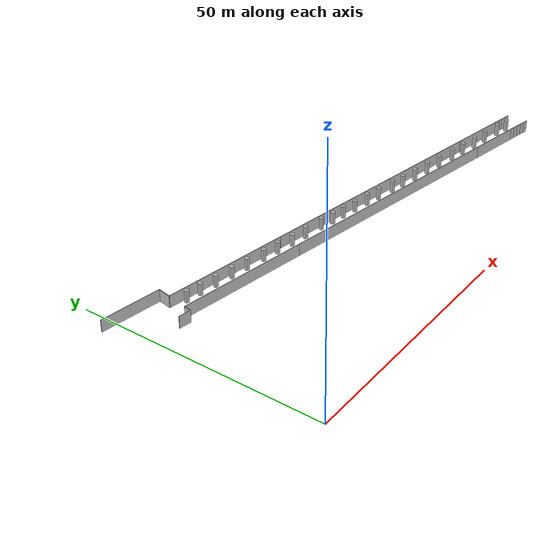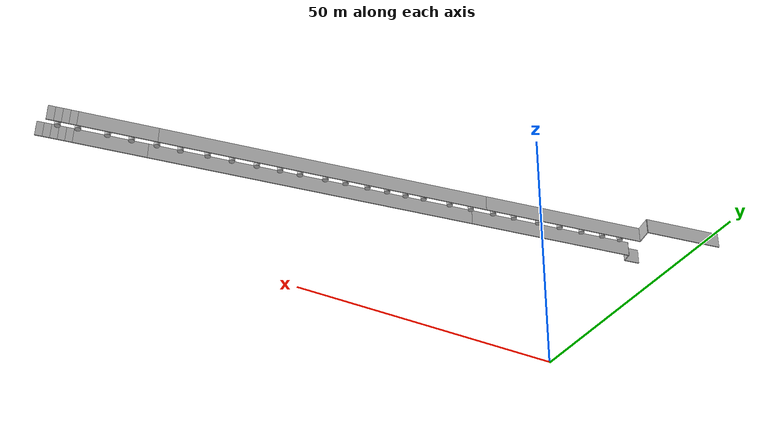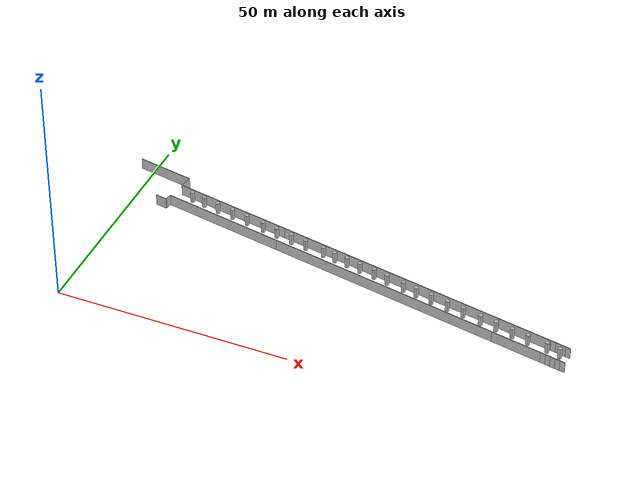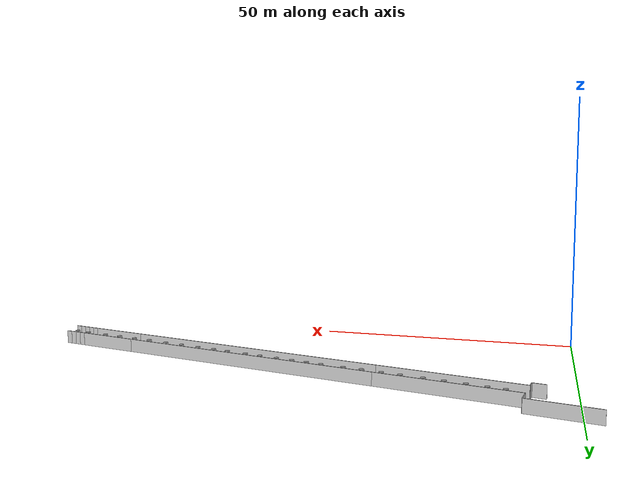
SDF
<?xml version="1.0" ?>
<sdf version="1.6">
  <model name="sps_1423">
    <pose frame="">0 0 0 0 -0 0</pose>
    <static>1</static>
    <self_collide>0</self_collide>
    <allow_auto_disable>0</allow_auto_disable>
    <link name="Wall69">
      <kinematic>0</kinematic>
      <gravity>1</gravity>
      <self_collide>0</self_collide>
      <collision name="collision">
        <geometry>
          <box>
            <size>1.5008 0.15 2.5</size>
          </box>
        </geometry>
        <pose frame="">0 0 0 0 -0 0</pose>
      </collision>
      <visual name="visual">
        <geometry>
          <box>
            <size>1.5008 0.15 2.5</size>
          </box>
        </geometry>
        <pose frame="">0 0 0 0 -0 0</pose>
        <cast_shadows>1</cast_shadows>
        <transparency>0.0</transparency>
      </visual>
      <pose frame="">7.90746 33.8521 1.25 0 0 -1.75009</pose>
    </link>
    <link name="Wall70">
      <kinematic>0</kinematic>
      <gravity>1</gravity>
      <self_collide>0</self_collide>
      <collision name="collision">
        <geometry>
          <box>
            <size>26.1084 0.15 2.5</size>
          </box>
        </geometry>
        <pose frame="">0 0 0 0 -0 0</pose>
      </collision>
      <visual name="visual">
        <geometry>
          <box>
            <size>26.1084 0.15 2.5</size>
          </box>
        </geometry>
        <pose frame="">0 0 0 0 -0 0</pose>
        <cast_shadows>1</cast_shadows>
        <transparency>0.0</transparency>
      </visual>
      <pose frame="">21.6248 36.3337 1.25 0 0 -0.179428</pose>
    </link>
    <link name="Wall71">
      <kinematic>0</kinematic>
      <gravity>1</gravity>
      <self_collide>0</self_collide>
      <collision name="collision">
        <geometry>
          <box>
            <size>50.8158 0.15 2.5</size>
          </box>
        </geometry>
        <pose frame="">0 0 0 0 -0 0</pose>
      </collision>
      <visual name="visual">
        <geometry>
          <box>
            <size>50.8158 0.15 2.5</size>
          </box>
        </geometry>
        <pose frame="">0 0 0 0 -0 0</pose>
        <cast_shadows>1</cast_shadows>
        <transparency>0.0</transparency>
      </visual>
      <pose frame="">59.4694 29.4695 1.25 0 0 -0.179428</pose>
    </link>
    <link name="Wall72">
      <kinematic>0</kinematic>
      <gravity>1</gravity>
      <self_collide>0</self_collide>
      <collision name="collision">
        <geometry>
          <box>
            <size>11.6478 0.15 2.5</size>
          </box>
        </geometry>
        <pose frame="">0 0 0 0 -0 0</pose>
      </collision>
      <visual name="visual">
        <geometry>
          <box>
            <size>11.6478 0.15 2.5</size>
          </box>
        </geometry>
        <pose frame="">0 0 0 0 -0 0</pose>
        <cast_shadows>1</cast_shadows>
        <transparency>0.0</transparency>
      </visual>
      <pose frame="">90.1999 23.8957 1.25 0 0 -0.179428</pose>
    </link>
    <link name="Wall146">
      <kinematic>0</kinematic>
      <gravity>1</gravity>
      <self_collide>0</self_collide>
      <collision name="collision">
        <geometry>
          <box>
            <size>2.50041 0.15 2.5</size>
          </box>
        </geometry>
        <pose frame="">0 0 0 0 -0 0</pose>
      </collision>
      <visual name="visual">
        <geometry>
          <box>
            <size>2.50041 0.15 2.5</size>
          </box>
        </geometry>
        <pose frame="">0 0 0 0 -0 0</pose>
        <cast_shadows>1</cast_shadows>
        <transparency>0.0</transparency>
      </visual>
      <pose frame="">6.54354 33.337 1.25 0 -0 2.96202</pose>
    </link>
    <link name="Wall571">
      <kinematic>0</kinematic>
      <gravity>1</gravity>
      <self_collide>0</self_collide>
      <collision name="collision">
        <geometry>
          <box>
            <size>2.66015 0.15 2.5</size>
          </box>
        </geometry>
        <pose frame="">0 0 0 0 -0 0</pose>
      </collision>
      <visual name="visual">
        <geometry>
          <box>
            <size>2.66015 0.15 2.5</size>
          </box>
        </geometry>
        <pose frame="">0 0 0 0 -0 0</pose>
        <cast_shadows>1</cast_shadows>
        <transparency>0.0</transparency>
      </visual>
      <pose frame="">9.01763 39.9722 1.25 0 0 -1.75024</pose>
    </link>
    <link name="Wall572">
      <kinematic>0</kinematic>
      <gravity>1</gravity>
      <self_collide>0</self_collide>
      <collision name="collision">
        <geometry>
          <box>
            <size>12.5 0.15 2.5</size>
          </box>
        </geometry>
        <pose frame="">0 0 0 0 -0 0</pose>
      </collision>
      <visual name="visual">
        <geometry>
          <box>
            <size>12.5 0.15 2.5</size>
          </box>
        </geometry>
        <pose frame="">0 0 0 0 -0 0</pose>
        <cast_shadows>1</cast_shadows>
        <transparency>0.0</transparency>
      </visual>
      <pose frame="">3.10534 42.3961 1.25 0 0 -0.179394</pose>
    </link>
    <link name="Wall647">
      <kinematic>0</kinematic>
      <gravity>1</gravity>
      <self_collide>0</self_collide>
      <collision name="collision">
        <geometry>
          <box>
            <size>10.886 0.15 2.5</size>
          </box>
        </geometry>
        <pose frame="">0 0 0 0 -0 0</pose>
      </collision>
      <visual name="visual">
        <geometry>
          <box>
            <size>10.886 0.15 2.5</size>
          </box>
        </geometry>
        <pose frame="">0 0 0 0 -0 0</pose>
        <cast_shadows>1</cast_shadows>
        <transparency>0.0</transparency>
      </visual>
      <pose frame="">89.8251 19.7569 1.25 0 -0 2.96217</pose>
    </link>
    <link name="Wall648">
      <kinematic>0</kinematic>
      <gravity>1</gravity>
      <self_collide>0</self_collide>
      <collision name="collision">
        <geometry>
          <box>
            <size>50.8158 0.15 2.5</size>
          </box>
        </geometry>
        <pose frame="">0 0 0 0 -0 0</pose>
      </collision>
      <visual name="visual">
        <geometry>
          <box>
            <size>50.8158 0.15 2.5</size>
          </box>
        </geometry>
        <pose frame="">0 0 0 0 -0 0</pose>
        <cast_shadows>1</cast_shadows>
        <transparency>0.0</transparency>
      </visual>
      <pose frame="">59.4694 25.2626 1.25 0 -0 2.96217</pose>
    </link>
    <link name="Wall649">
      <kinematic>0</kinematic>
      <gravity>1</gravity>
      <self_collide>0</self_collide>
      <collision name="collision">
        <geometry>
          <box>
            <size>26.8594 0.15 2.5</size>
          </box>
        </geometry>
        <pose frame="">0 0 0 0 -0 0</pose>
      </collision>
      <visual name="visual">
        <geometry>
          <box>
            <size>26.8594 0.15 2.5</size>
          </box>
        </geometry>
        <pose frame="">0 0 0 0 -0 0</pose>
        <cast_shadows>1</cast_shadows>
        <transparency>0.0</transparency>
      </visual>
      <pose frame="">21.2554 32.1938 1.25 0 -0 2.96217</pose>
    </link>
    <link name="Wall8181">
      <kinematic>0</kinematic>
      <gravity>1</gravity>
      <self_collide>0</self_collide>
      <collision name="collision">
        <geometry>
          <box>
            <size>1.07598 0.15 2.5</size>
          </box>
        </geometry>
        <pose frame="">0 0 0 0 -0 0</pose>
      </collision>
      <visual name="visual">
        <geometry>
          <box>
            <size>1.07598 0.15 2.5</size>
          </box>
        </geometry>
        <pose frame="">0 0 0 0 -0 0</pose>
        <cast_shadows>1</cast_shadows>
        <transparency>0.0</transparency>
      </visual>
      <pose frame="">99.9402 17.8966 1.25 0 -0 2.95444</pose>
    </link>
    <link name="Wall8182">
      <kinematic>0</kinematic>
      <gravity>1</gravity>
      <self_collide>0</self_collide>
      <collision name="collision">
        <geometry>
          <box>
            <size>1.07593 0.15 2.5</size>
          </box>
        </geometry>
        <pose frame="">0 0 0 0 -0 0</pose>
      </collision>
      <visual name="visual">
        <geometry>
          <box>
            <size>1.07593 0.15 2.5</size>
          </box>
        </geometry>
        <pose frame="">0 0 0 0 -0 0</pose>
        <cast_shadows>1</cast_shadows>
        <transparency>0.0</transparency>
      </visual>
      <pose frame="">98.883 18.0962 1.25 0 -0 2.95559</pose>
    </link>
    <link name="Wall8183">
      <kinematic>0</kinematic>
      <gravity>1</gravity>
      <self_collide>0</self_collide>
      <collision name="collision">
        <geometry>
          <box>
            <size>1.07596 0.15 2.5</size>
          </box>
        </geometry>
        <pose frame="">0 0 0 0 -0 0</pose>
      </collision>
      <visual name="visual">
        <geometry>
          <box>
            <size>1.07596 0.15 2.5</size>
          </box>
        </geometry>
        <pose frame="">0 0 0 0 -0 0</pose>
        <cast_shadows>1</cast_shadows>
        <transparency>0.0</transparency>
      </visual>
      <pose frame="">97.8255 18.2946 1.25 0 -0 2.95669</pose>
    </link>
    <link name="Wall8184">
      <kinematic>0</kinematic>
      <gravity>1</gravity>
      <self_collide>0</self_collide>
      <collision name="collision">
        <geometry>
          <box>
            <size>1.07609 0.15 2.5</size>
          </box>
        </geometry>
        <pose frame="">0 0 0 0 -0 0</pose>
      </collision>
      <visual name="visual">
        <geometry>
          <box>
            <size>1.07609 0.15 2.5</size>
          </box>
        </geometry>
        <pose frame="">0 0 0 0 -0 0</pose>
        <cast_shadows>1</cast_shadows>
        <transparency>0.0</transparency>
      </visual>
      <pose frame="">96.7677 18.4918 1.25 0 -0 2.95787</pose>
    </link>
    <link name="Wall8185">
      <kinematic>0</kinematic>
      <gravity>1</gravity>
      <self_collide>0</self_collide>
      <collision name="collision">
        <geometry>
          <box>
            <size>1.07587 0.15 2.5</size>
          </box>
        </geometry>
        <pose frame="">0 0 0 0 -0 0</pose>
      </collision>
      <visual name="visual">
        <geometry>
          <box>
            <size>1.07587 0.15 2.5</size>
          </box>
        </geometry>
        <pose frame="">0 0 0 0 -0 0</pose>
        <cast_shadows>1</cast_shadows>
        <transparency>0.0</transparency>
      </visual>
      <pose frame="">95.7097 18.6878 1.25 0 -0 2.95898</pose>
    </link>
    <link name="Wall9147">
      <kinematic>0</kinematic>
      <gravity>1</gravity>
      <self_collide>0</self_collide>
      <collision name="collision">
        <geometry>
          <box>
            <size>1.08064 0.15 2.5</size>
          </box>
        </geometry>
        <pose frame="">0 0 0 0 -0 0</pose>
      </collision>
      <visual name="visual">
        <geometry>
          <box>
            <size>1.08064 0.15 2.5</size>
          </box>
        </geometry>
        <pose frame="">0 0 0 0 -0 0</pose>
        <cast_shadows>1</cast_shadows>
        <transparency>0.0</transparency>
      </visual>
      <pose frame="">99.6486 22.1638 1.25 0 -0 2.95566</pose>
    </link>
    <link name="Wall9148">
      <kinematic>0</kinematic>
      <gravity>1</gravity>
      <self_collide>0</self_collide>
      <collision name="collision">
        <geometry>
          <box>
            <size>1.08064 0.15 2.5</size>
          </box>
        </geometry>
        <pose frame="">0 0 0 0 -0 0</pose>
      </collision>
      <visual name="visual">
        <geometry>
          <box>
            <size>1.08064 0.15 2.5</size>
          </box>
        </geometry>
        <pose frame="">0 0 0 0 -0 0</pose>
        <cast_shadows>1</cast_shadows>
        <transparency>0.0</transparency>
      </visual>
      <pose frame="">98.5865 22.3631 1.25 0 -0 2.95658</pose>
    </link>
    <link name="Wall9149">
      <kinematic>0</kinematic>
      <gravity>1</gravity>
      <self_collide>0</self_collide>
      <collision name="collision">
        <geometry>
          <box>
            <size>1.08074 0.15 2.5</size>
          </box>
        </geometry>
        <pose frame="">0 0 0 0 -0 0</pose>
      </collision>
      <visual name="visual">
        <geometry>
          <box>
            <size>1.08074 0.15 2.5</size>
          </box>
        </geometry>
        <pose frame="">0 0 0 0 -0 0</pose>
        <cast_shadows>1</cast_shadows>
        <transparency>0.0</transparency>
      </visual>
      <pose frame="">97.5242 22.5612 1.25 0 -0 2.95792</pose>
    </link>
    <link name="Wall9150">
      <kinematic>0</kinematic>
      <gravity>1</gravity>
      <self_collide>0</self_collide>
      <collision name="collision">
        <geometry>
          <box>
            <size>1.08062 0.15 2.5</size>
          </box>
        </geometry>
        <pose frame="">0 0 0 0 -0 0</pose>
      </collision>
      <visual name="visual">
        <geometry>
          <box>
            <size>1.08062 0.15 2.5</size>
          </box>
        </geometry>
        <pose frame="">0 0 0 0 -0 0</pose>
        <cast_shadows>1</cast_shadows>
        <transparency>0.0</transparency>
      </visual>
      <pose frame="">96.4616 22.7581 1.25 0 -0 2.95882</pose>
    </link>

    <link name="Cylinder11404">
      <kinematic>0</kinematic>
      <gravity>1</gravity>
      <self_collide>0</self_collide>
      <collision name="collision">
        <geometry>
          <cylinder>
            <radius>0.4518338297493756</radius>
            <length>2.5</length>
          </cylinder>
        </geometry>
        <pose frame="">0 0 0 0 -0 0</pose>
      </collision>
      <visual name="visual">
        <geometry>
          <cylinder>
            <radius>0.4518338297493756</radius>
            <length>2.5</length>
          </cylinder>
        </geometry>
        <pose frame="">0 0 0 0 -0 0</pose>
        <cast_shadows>1</cast_shadows>
        <transparency>0.0</transparency>
      </visual>
      <pose frame="">11.829 37.394 1.25 0 -0 0</pose>
    </link>
    <link name="Cylinder11405">
      <kinematic>0</kinematic>
      <gravity>1</gravity>
      <self_collide>0</self_collide>
      <collision name="collision">
        <geometry>
          <cylinder>
            <radius>0.4518338297493756</radius>
            <length>2.5</length>
          </cylinder>
        </geometry>
        <pose frame="">0 0 0 0 -0 0</pose>
      </collision>
      <visual name="visual">
        <geometry>
          <cylinder>
            <radius>0.4518338297493756</radius>
            <length>2.5</length>
          </cylinder>
        </geometry>
        <pose frame="">0 0 0 0 -0 0</pose>
        <cast_shadows>1</cast_shadows>
        <transparency>0.0</transparency>
      </visual>
      <pose frame="">14.807 36.8399 1.25 0 -0 0</pose>
    </link>
    <link name="Cylinder11406">
      <kinematic>0</kinematic>
      <gravity>1</gravity>
      <self_collide>0</self_collide>
      <collision name="collision">
        <geometry>
          <cylinder>
            <radius>0.4518338297493756</radius>
            <length>2.5</length>
          </cylinder>
        </geometry>
        <pose frame="">0 0 0 0 -0 0</pose>
      </collision>
      <visual name="visual">
        <geometry>
          <cylinder>
            <radius>0.4518338297493756</radius>
            <length>2.5</length>
          </cylinder>
        </geometry>
        <pose frame="">0 0 0 0 -0 0</pose>
        <cast_shadows>1</cast_shadows>
        <transparency>0.0</transparency>
      </visual>
      <pose frame="">18.2779 36.1419 1.25 0 -0 0</pose>
    </link>
    <link name="Cylinder11407">
      <kinematic>0</kinematic>
      <gravity>1</gravity>
      <self_collide>0</self_collide>
      <collision name="collision">
        <geometry>
          <cylinder>
            <radius>0.4518338297493756</radius>
            <length>2.5</length>
          </cylinder>
        </geometry>
        <pose frame="">0 0 0 0 -0 0</pose>
      </collision>
      <visual name="visual">
        <geometry>
          <cylinder>
            <radius>0.4518338297493756</radius>
            <length>2.5</length>
          </cylinder>
        </geometry>
        <pose frame="">0 0 0 0 -0 0</pose>
        <cast_shadows>1</cast_shadows>
        <transparency>0.0</transparency>
      </visual>
      <pose frame="">21.9542 35.485 1.25 0 -0 0</pose>
    </link>
    <link name="Cylinder11408">
      <kinematic>0</kinematic>
      <gravity>1</gravity>
      <self_collide>0</self_collide>
      <collision name="collision">
        <geometry>
          <cylinder>
            <radius>0.4518338297493756</radius>
            <length>2.5</length>
          </cylinder>
        </geometry>
        <pose frame="">0 0 0 0 -0 0</pose>
      </collision>
      <visual name="visual">
        <geometry>
          <cylinder>
            <radius>0.4518338297493756</radius>
            <length>2.5</length>
          </cylinder>
        </geometry>
        <pose frame="">0 0 0 0 -0 0</pose>
        <cast_shadows>1</cast_shadows>
        <transparency>0.0</transparency>
      </visual>
      <pose frame="">25.5484 34.8486 1.25 0 -0 0</pose>
    </link>
    <link name="Cylinder11409">
      <kinematic>0</kinematic>
      <gravity>1</gravity>
      <self_collide>0</self_collide>
      <collision name="collision">
        <geometry>
          <cylinder>
            <radius>0.4518338297493756</radius>
            <length>2.5</length>
          </cylinder>
        </geometry>
        <pose frame="">0 0 0 0 -0 0</pose>
      </collision>
      <visual name="visual">
        <geometry>
          <cylinder>
            <radius>0.4518338297493756</radius>
            <length>2.5</length>
          </cylinder>
        </geometry>
        <pose frame="">0 0 0 0 -0 0</pose>
        <cast_shadows>1</cast_shadows>
        <transparency>0.0</transparency>
      </visual>
      <pose frame="">29.5327 34.1301 1.25 0 -0 0</pose>
    </link>
    <link name="Cylinder11410">
      <kinematic>0</kinematic>
      <gravity>1</gravity>
      <self_collide>0</self_collide>
      <collision name="collision">
        <geometry>
          <cylinder>
            <radius>0.4518338297493756</radius>
            <length>2.5</length>
          </cylinder>
        </geometry>
        <pose frame="">0 0 0 0 -0 0</pose>
      </collision>
      <visual name="visual">
        <geometry>
          <cylinder>
            <radius>0.4518338297493756</radius>
            <length>2.5</length>
          </cylinder>
        </geometry>
        <pose frame="">0 0 0 0 -0 0</pose>
        <cast_shadows>1</cast_shadows>
        <transparency>0.0</transparency>
      </visual>
      <pose frame="">32.9009 33.4937 1.25 0 -0 0</pose>
    </link>
    <link name="Cylinder11411">
      <kinematic>0</kinematic>
      <gravity>1</gravity>
      <self_collide>0</self_collide>
      <collision name="collision">
        <geometry>
          <cylinder>
            <radius>0.4518338297493756</radius>
            <length>2.5</length>
          </cylinder>
        </geometry>
        <pose frame="">0 0 0 0 -0 0</pose>
      </collision>
      <visual name="visual">
        <geometry>
          <cylinder>
            <radius>0.4518338297493756</radius>
            <length>2.5</length>
          </cylinder>
        </geometry>
        <pose frame="">0 0 0 0 -0 0</pose>
        <cast_shadows>1</cast_shadows>
        <transparency>0.0</transparency>
      </visual>
      <pose frame="">36.5023 32.8145 1.25 0 -0 0</pose>
    </link>
    <link name="Cylinder11412">
      <kinematic>0</kinematic>
      <gravity>1</gravity>
      <self_collide>0</self_collide>
      <collision name="collision">
        <geometry>
          <cylinder>
            <radius>0.4518338297493756</radius>
            <length>2.5</length>
          </cylinder>
        </geometry>
        <pose frame="">0 0 0 0 -0 0</pose>
      </collision>
      <visual name="visual">
        <geometry>
          <cylinder>
            <radius>0.4518338297493756</radius>
            <length>2.5</length>
          </cylinder>
        </geometry>
        <pose frame="">0 0 0 0 -0 0</pose>
        <cast_shadows>1</cast_shadows>
        <transparency>0.0</transparency>
      </visual>
      <pose frame="">39.9321 32.2602 1.25 0 -0 0</pose>
    </link>
    <link name="Cylinder11413">
      <kinematic>0</kinematic>
      <gravity>1</gravity>
      <self_collide>0</self_collide>
      <collision name="collision">
        <geometry>
          <cylinder>
            <radius>0.4518338297493756</radius>
            <length>2.5</length>
          </cylinder>
        </geometry>
        <pose frame="">0 0 0 0 -0 0</pose>
      </collision>
      <visual name="visual">
        <geometry>
          <cylinder>
            <radius>0.4518338297493756</radius>
            <length>2.5</length>
          </cylinder>
        </geometry>
        <pose frame="">0 0 0 0 -0 0</pose>
        <cast_shadows>1</cast_shadows>
        <transparency>0.0</transparency>
      </visual>
      <pose frame="">44.1424 31.6033 1.25 0 -0 0</pose>
    </link>
    <link name="Cylinder11414">
      <kinematic>0</kinematic>
      <gravity>1</gravity>
      <self_collide>0</self_collide>
      <collision name="collision">
        <geometry>
          <cylinder>
            <radius>0.4518338297493756</radius>
            <length>2.5</length>
          </cylinder>
        </geometry>
        <pose frame="">0 0 0 0 -0 0</pose>
      </collision>
      <visual name="visual">
        <geometry>
          <cylinder>
            <radius>0.4518338297493756</radius>
            <length>2.5</length>
          </cylinder>
        </geometry>
        <pose frame="">0 0 0 0 -0 0</pose>
        <cast_shadows>1</cast_shadows>
        <transparency>0.0</transparency>
      </visual>
      <pose frame="">46.9561 30.9669 1.25 0 -0 0</pose>
    </link>
    <link name="Cylinder11415">
      <kinematic>0</kinematic>
      <gravity>1</gravity>
      <self_collide>0</self_collide>
      <collision name="collision">
        <geometry>
          <cylinder>
            <radius>0.4518338297493756</radius>
            <length>2.5</length>
          </cylinder>
        </geometry>
        <pose frame="">0 0 0 0 -0 0</pose>
      </collision>
      <visual name="visual">
        <geometry>
          <cylinder>
            <radius>0.4518338297493756</radius>
            <length>2.5</length>
          </cylinder>
        </geometry>
        <pose frame="">0 0 0 0 -0 0</pose>
        <cast_shadows>1</cast_shadows>
        <transparency>0.0</transparency>
      </visual>
      <pose frame="">49.8519 30.4948 1.25 0 -0 0</pose>
    </link>
    <link name="Cylinder11416">
      <kinematic>0</kinematic>
      <gravity>1</gravity>
      <self_collide>0</self_collide>
      <collision name="collision">
        <geometry>
          <cylinder>
            <radius>0.4518338297493756</radius>
            <length>2.5</length>
          </cylinder>
        </geometry>
        <pose frame="">0 0 0 0 -0 0</pose>
      </collision>
      <visual name="visual">
        <geometry>
          <cylinder>
            <radius>0.4518338297493756</radius>
            <length>2.5</length>
          </cylinder>
        </geometry>
        <pose frame="">0 0 0 0 -0 0</pose>
        <cast_shadows>1</cast_shadows>
        <transparency>0.0</transparency>
      </visual>
      <pose frame="">52.8915 29.8789 1.25 0 -0 0</pose>
    </link>
    <link name="Cylinder11417">
      <kinematic>0</kinematic>
      <gravity>1</gravity>
      <self_collide>0</self_collide>
      <collision name="collision">
        <geometry>
          <cylinder>
            <radius>0.4518338297493756</radius>
            <length>2.5</length>
          </cylinder>
        </geometry>
        <pose frame="">0 0 0 0 -0 0</pose>
      </collision>
      <visual name="visual">
        <geometry>
          <cylinder>
            <radius>0.4518338297493756</radius>
            <length>2.5</length>
          </cylinder>
        </geometry>
        <pose frame="">0 0 0 0 -0 0</pose>
        <cast_shadows>1</cast_shadows>
        <transparency>0.0</transparency>
      </visual>
      <pose frame="">56.2803 29.263 1.25 0 -0 0</pose>
    </link>
    <link name="Cylinder11418">
      <kinematic>0</kinematic>
      <gravity>1</gravity>
      <self_collide>0</self_collide>
      <collision name="collision">
        <geometry>
          <cylinder>
            <radius>0.4518338297493756</radius>
            <length>2.5</length>
          </cylinder>
        </geometry>
        <pose frame="">0 0 0 0 -0 0</pose>
      </collision>
      <visual name="visual">
        <geometry>
          <cylinder>
            <radius>0.4518338297493756</radius>
            <length>2.5</length>
          </cylinder>
        </geometry>
        <pose frame="">0 0 0 0 -0 0</pose>
        <cast_shadows>1</cast_shadows>
        <transparency>0.0</transparency>
      </visual>
      <pose frame="">59.3199 28.6266 1.25 0 -0 0</pose>
    </link>
    <link name="Cylinder11419">
      <kinematic>0</kinematic>
      <gravity>1</gravity>
      <self_collide>0</self_collide>
      <collision name="collision">
        <geometry>
          <cylinder>
            <radius>0.4518338297493756</radius>
            <length>2.5</length>
          </cylinder>
        </geometry>
        <pose frame="">0 0 0 0 -0 0</pose>
      </collision>
      <visual name="visual">
        <geometry>
          <cylinder>
            <radius>0.4518338297493756</radius>
            <length>2.5</length>
          </cylinder>
        </geometry>
        <pose frame="">0 0 0 0 -0 0</pose>
        <cast_shadows>1</cast_shadows>
        <transparency>0.0</transparency>
      </visual>
      <pose frame="">63.1646 27.867 1.25 0 -0 0</pose>
    </link>
    <link name="Cylinder11420">
      <kinematic>0</kinematic>
      <gravity>1</gravity>
      <self_collide>0</self_collide>
      <collision name="collision">
        <geometry>
          <cylinder>
            <radius>0.4518338297493756</radius>
            <length>2.5</length>
          </cylinder>
        </geometry>
        <pose frame="">0 0 0 0 -0 0</pose>
      </collision>
      <visual name="visual">
        <geometry>
          <cylinder>
            <radius>0.4518338297493756</radius>
            <length>2.5</length>
          </cylinder>
        </geometry>
        <pose frame="">0 0 0 0 -0 0</pose>
        <cast_shadows>1</cast_shadows>
        <transparency>0.0</transparency>
      </visual>
      <pose frame="">66.1426 27.3129 1.25 0 -0 0</pose>
    </link>
    <link name="Cylinder11421">
      <kinematic>0</kinematic>
      <gravity>1</gravity>
      <self_collide>0</self_collide>
      <collision name="collision">
        <geometry>
          <cylinder>
            <radius>0.4518338297493756</radius>
            <length>2.5</length>
          </cylinder>
        </geometry>
        <pose frame="">0 0 0 0 -0 0</pose>
      </collision>
      <visual name="visual">
        <geometry>
          <cylinder>
            <radius>0.4518338297493756</radius>
            <length>2.5</length>
          </cylinder>
        </geometry>
        <pose frame="">0 0 0 0 -0 0</pose>
        <cast_shadows>1</cast_shadows>
        <transparency>0.0</transparency>
      </visual>
      <pose frame="">69.6135 26.6149 1.25 0 -0 0</pose>
    </link>
    <link name="Cylinder11422">
      <kinematic>0</kinematic>
      <gravity>1</gravity>
      <self_collide>0</self_collide>
      <collision name="collision">
        <geometry>
          <cylinder>
            <radius>0.4518338297493756</radius>
            <length>2.5</length>
          </cylinder>
        </geometry>
        <pose frame="">0 0 0 0 -0 0</pose>
      </collision>
      <visual name="visual">
        <geometry>
          <cylinder>
            <radius>0.4518338297493756</radius>
            <length>2.5</length>
          </cylinder>
        </geometry>
        <pose frame="">0 0 0 0 -0 0</pose>
        <cast_shadows>1</cast_shadows>
        <transparency>0.0</transparency>
      </visual>
      <pose frame="">73.2898 25.958 1.25 0 -0 0</pose>
    </link>
    <link name="Cylinder11423">
      <kinematic>0</kinematic>
      <gravity>1</gravity>
      <self_collide>0</self_collide>
      <collision name="collision">
        <geometry>
          <cylinder>
            <radius>0.4518338297493756</radius>
            <length>2.5</length>
          </cylinder>
        </geometry>
        <pose frame="">0 0 0 0 -0 0</pose>
      </collision>
      <visual name="visual">
        <geometry>
          <cylinder>
            <radius>0.4518338297493756</radius>
            <length>2.5</length>
          </cylinder>
        </geometry>
        <pose frame="">0 0 0 0 -0 0</pose>
        <cast_shadows>1</cast_shadows>
        <transparency>0.0</transparency>
      </visual>
      <pose frame="">76.8839 25.3216 1.25 0 -0 0</pose>
    </link>
    <link name="Cylinder11424">
      <kinematic>0</kinematic>
      <gravity>1</gravity>
      <self_collide>0</self_collide>
      <collision name="collision">
        <geometry>
          <cylinder>
            <radius>0.4518338297493756</radius>
            <length>2.5</length>
          </cylinder>
        </geometry>
        <pose frame="">0 0 0 0 -0 0</pose>
      </collision>
      <visual name="visual">
        <geometry>
          <cylinder>
            <radius>0.4518338297493756</radius>
            <length>2.5</length>
          </cylinder>
        </geometry>
        <pose frame="">0 0 0 0 -0 0</pose>
        <cast_shadows>1</cast_shadows>
        <transparency>0.0</transparency>
      </visual>
      <pose frame="">84.2365 23.9667 1.25 0 -0 0</pose>
    </link>
    <link name="Cylinder11425">
      <kinematic>0</kinematic>
      <gravity>1</gravity>
      <self_collide>0</self_collide>
      <collision name="collision">
        <geometry>
          <cylinder>
            <radius>0.4518338297493756</radius>
            <length>2.5</length>
          </cylinder>
        </geometry>
        <pose frame="">0 0 0 0 -0 0</pose>
      </collision>
      <visual name="visual">
        <geometry>
          <cylinder>
            <radius>0.4518338297493756</radius>
            <length>2.5</length>
          </cylinder>
        </geometry>
        <pose frame="">0 0 0 0 -0 0</pose>
        <cast_shadows>1</cast_shadows>
        <transparency>0.0</transparency>
      </visual>
      <pose frame="">87.8378 23.2875 1.25 0 -0 0</pose>
    </link>
    <link name="Cylinder11426">
      <kinematic>0</kinematic>
      <gravity>1</gravity>
      <self_collide>0</self_collide>
      <collision name="collision">
        <geometry>
          <cylinder>
            <radius>0.4518338297493756</radius>
            <length>2.5</length>
          </cylinder>
        </geometry>
        <pose frame="">0 0 0 0 -0 0</pose>
      </collision>
      <visual name="visual">
        <geometry>
          <cylinder>
            <radius>0.4518338297493756</radius>
            <length>2.5</length>
          </cylinder>
        </geometry>
        <pose frame="">0 0 0 0 -0 0</pose>
        <cast_shadows>1</cast_shadows>
        <transparency>0.0</transparency>
      </visual>
      <pose frame="">91.2676 22.7332 1.25 0 -0 0</pose>
    </link>
    <link name="Cylinder11427">
      <kinematic>0</kinematic>
      <gravity>1</gravity>
      <self_collide>0</self_collide>
      <collision name="collision">
        <geometry>
          <cylinder>
            <radius>0.4518338297493756</radius>
            <length>2.5</length>
          </cylinder>
        </geometry>
        <pose frame="">0 0 0 0 -0 0</pose>
      </collision>
      <visual name="visual">
        <geometry>
          <cylinder>
            <radius>0.4518338297493756</radius>
            <length>2.5</length>
          </cylinder>
        </geometry>
        <pose frame="">0 0 0 0 -0 0</pose>
        <cast_shadows>1</cast_shadows>
        <transparency>0.0</transparency>
      </visual>
      <pose frame="">95.4779 22.0763 1.25 0 -0 0</pose>
    </link>
    <link name="Cylinder11428">
      <kinematic>0</kinematic>
      <gravity>1</gravity>
      <self_collide>0</self_collide>
      <collision name="collision">
        <geometry>
          <cylinder>
            <radius>0.4518338297493756</radius>
            <length>2.5</length>
          </cylinder>
        </geometry>
        <pose frame="">0 0 0 0 -0 0</pose>
      </collision>
      <visual name="visual">
        <geometry>
          <cylinder>
            <radius>0.4518338297493756</radius>
            <length>2.5</length>
          </cylinder>
        </geometry>
        <pose frame="">0 0 0 0 -0 0</pose>
        <cast_shadows>1</cast_shadows>
        <transparency>0.0</transparency>
      </visual>
      <pose frame="">98.2916 21.4399 1.25 0 -0 0</pose>
    </link>
    <link name="Cylinder11429">
      <kinematic>0</kinematic>
      <gravity>1</gravity>
      <self_collide>0</self_collide>
      <collision name="collision">
        <geometry>
          <cylinder>
            <radius>0.4518338297493756</radius>
            <length>2.5</length>
          </cylinder>
        </geometry>
        <pose frame="">0 0 0 0 -0 0</pose>
      </collision>
      <visual name="visual">
        <geometry>
          <cylinder>
            <radius>0.4518338297493756</radius>
            <length>2.5</length>
          </cylinder>
        </geometry>
        <pose frame="">0 0 0 0 -0 0</pose>
        <cast_shadows>1</cast_shadows>
        <transparency>0.0</transparency>
      </visual>
      <pose frame="">80.7994 24.5041 1.25 0 -0 0</pose>
    </link>
  </model>
</sdf>
